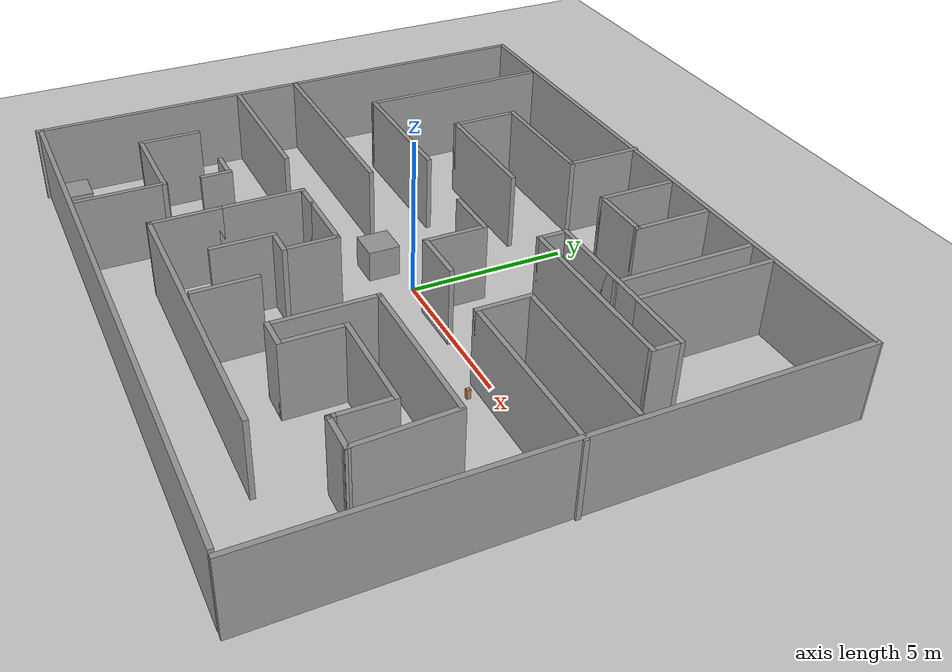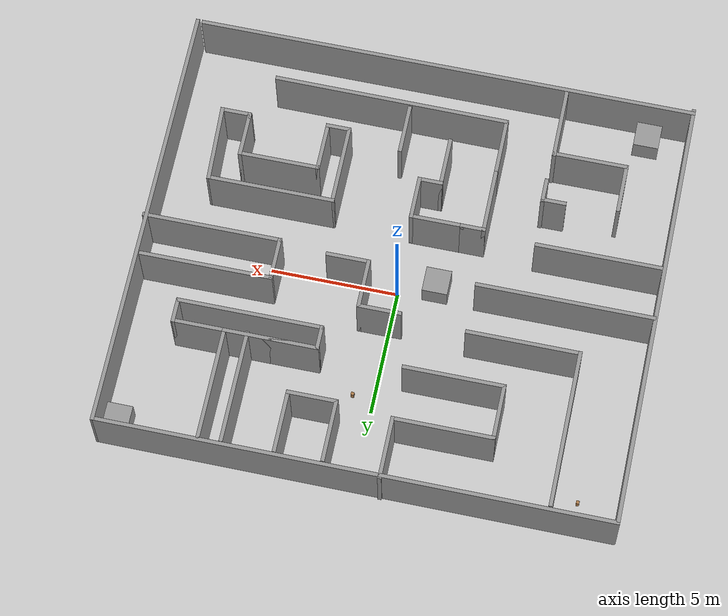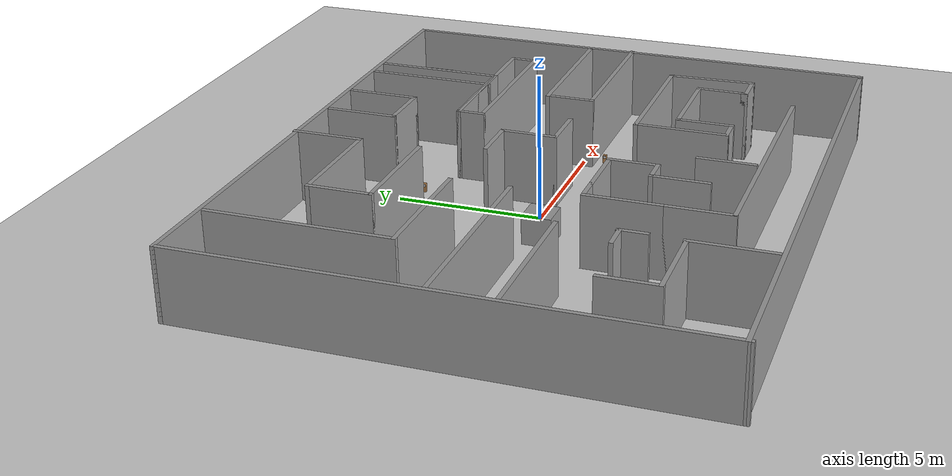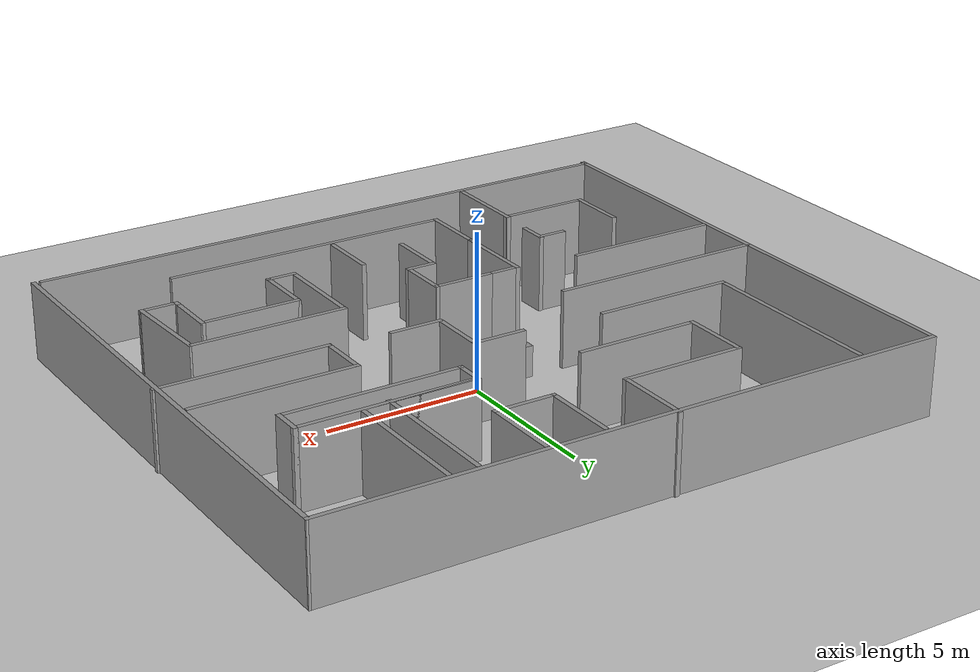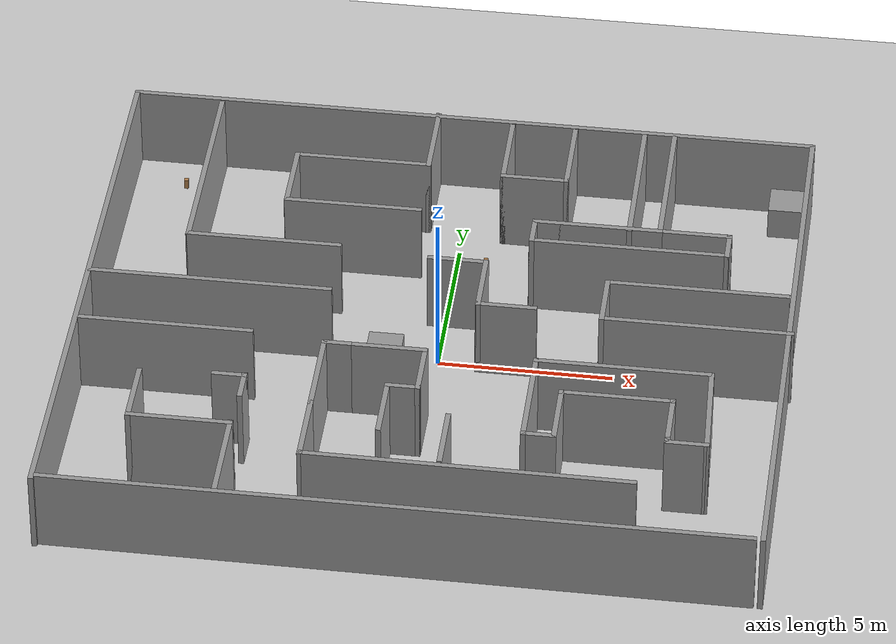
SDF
<sdf version="1.7">
 <world name="default">
  <light name="sun" type="directional">
   <pose>0 0 10 0 -0 0</pose>
   <diffuse>0.8 0.8 0.8 1</diffuse>
   <specular>0.2 0.2 0.2 1</specular>
   <attenuation>
    <range>1000</range>
    <constant>0.9</constant>
    <linear>0.01</linear>
    <quadratic>0.001</quadratic>
   </attenuation>
   <direction>-0.5 0.1 -0.9</direction>
   <spot><inner_angle>0</inner_angle><outer_angle>0</outer_angle><falloff>0</falloff></spot>
  </light>
  <model name="ground_plane">
   <static>1</static>
   <link name="link">
    <collision name="collision">
     <geometry><plane><normal>0 0 1</normal><size>100 100</size></plane></geometry>
     <surface><friction><ode><mu>100</mu><mu2>50</mu2></ode></friction></surface>
    </collision>
    <visual name="visual">
     <cast_shadows>0</cast_shadows>
     <geometry><plane><normal>0 0 1</normal><size>100 100</size></plane></geometry>
     <material>
      <script><uri>file://media/materials/scripts/gazebo.material</uri><name>Gazebo/Grey</name></script>
     </material>
    </visual>
   </link>
  </model>
  <gravity>0 0 -9.8</gravity>
  <magnetic_field>6e-06 2.3e-05 -4.2e-05</magnetic_field>
  <atmosphere type="adiabatic"/>
  <physics type="ode">
   <max_step_size>0.001</max_step_size>
   <real_time_factor>1</real_time_factor>
   <real_time_update_rate>1000</real_time_update_rate>
  </physics>
  <scene><ambient>0.4 0.4 0.4 1</ambient><background>0.7 0.7 0.7 1</background><shadows>1</shadows></scene>
  <audio><device>default</device></audio>
  <spherical_coordinates>
   <surface_model>EARTH_WGS84</surface_model>
   <latitude_deg>0</latitude_deg>
   <longitude_deg>0</longitude_deg>
   <elevation>0</elevation>
   <heading_deg>0</heading_deg>
  </spherical_coordinates>
  <model name="test1">
   <pose>0.01206 -0.37164 0 0 -0 0</pose>
   <link name="Wall_100">
    <collision name="Wall_100_Collision">
     <geometry><box><size>0.25 0.15 2.5</size></box></geometry>
     <pose>0 0 1.25 0 -0 0</pose>
    </collision>
    <visual name="Wall_100_Visual">
     <pose>0 0 1.25 0 -0 0</pose>
     <geometry><box><size>0.25 0.15 2.5</size></box></geometry>
     <material>
      <script><uri>file://media/materials/scripts/gazebo.material</uri><name>Gazebo/Grey</name></script>
      <ambient>1 1 1 1</ambient>
     </material>
     <meta><layer>0</layer></meta>
    </visual>
    <pose>6.9935 -4.91253 0 0 -0 -1.5708</pose>
   </link>
   <link name="Wall_101">
    <collision name="Wall_101_Collision">
     <geometry><box><size>1.25 0.15 2.5</size></box></geometry>
     <pose>0 0 1.25 0 -0 0</pose>
    </collision>
    <visual name="Wall_101_Visual">
     <pose>0 0 1.25 0 -0 0</pose>
     <geometry><box><size>1.25 0.15 2.5</size></box></geometry>
     <material>
      <script><uri>file://media/materials/scripts/gazebo.material</uri><name>Gazebo/Grey</name></script>
      <ambient>1 1 1 1</ambient>
     </material>
     <meta><layer>0</layer></meta>
    </visual>
    <pose>7.5435 -4.96253 0 0 -0 0</pose>
   </link>
   <link name="Wall_11">
    <collision name="Wall_11_Collision">
     <geometry><box><size>7 0.15 2.5</size></box></geometry>
     <pose>0 0 1.25 0 -0 0</pose>
    </collision>
    <visual name="Wall_11_Visual">
     <pose>0 0 1.25 0 -0 0</pose>
     <geometry><box><size>7 0.15 2.5</size></box></geometry>
     <material>
      <script><uri>file://media/materials/scripts/gazebo.material</uri><name>Gazebo/Grey</name></script>
      <ambient>1 1 1 1</ambient>
     </material>
     <meta><layer>0</layer></meta>
    </visual>
    <pose>-6.53301 0.309119 0 0 -0 0</pose>
   </link>
   <link name="Wall_13">
    <collision name="Wall_13_Collision">
     <geometry><box><size>2.85041 0.15 2.5</size></box></geometry>
     <pose>0 0 1.25 0 -0 0</pose>
    </collision>
    <visual name="Wall_13_Visual">
     <pose>0 0 1.25 0 -0 0</pose>
     <geometry><box><size>2.85041 0.15 2.5</size></box></geometry>
     <material>
      <script><uri>file://media/materials/scripts/gazebo.material</uri><name>Gazebo/Grey</name></script>
      <ambient>1 1 1 1</ambient>
     </material>
     <meta><layer>0</layer></meta>
    </visual>
    <pose>-4.99645 -7.03064 0 0 -0 1.5708</pose>
   </link>
   <link name="Wall_14">
    <collision name="Wall_14_Collision">
     <geometry><box><size>3 0.15 2.5</size></box></geometry>
     <pose>0 0 1.25 0 -0 0</pose>
    </collision>
    <visual name="Wall_14_Visual">
     <pose>0 0 1.25 0 -0 0</pose>
     <geometry><box><size>3 0.15 2.5</size></box></geometry>
     <material>
      <script><uri>file://media/materials/scripts/gazebo.material</uri><name>Gazebo/Grey</name></script>
      <ambient>1 1 1 1</ambient>
     </material>
     <meta><layer>0</layer></meta>
    </visual>
    <pose>-6.42145 -5.71078 0 0 -0 3.14159</pose>
   </link>
   <link name="Wall_16">
    <collision name="Wall_16_Collision">
     <geometry><box><size>4.5 0.15 2.5</size></box></geometry>
     <pose>0 0 1.25 0 -0 0</pose>
    </collision>
    <visual name="Wall_16_Visual">
     <pose>0 0 1.25 0 -0 0</pose>
     <geometry><box><size>4.5 0.15 2.5</size></box></geometry>
     <material>
      <script><uri>file://media/materials/scripts/gazebo.material</uri><name>Gazebo/Grey</name></script>
      <ambient>1 1 1 1</ambient>
     </material>
     <meta><layer>0</layer></meta>
    </visual>
    <pose>5.91618 6.2558 0 0 -0 -1.5708</pose>
   </link>
   <link name="Wall_17">
    <collision name="Wall_17_Collision">
     <geometry><box><size>3.75 0.15 2.5</size></box></geometry>
     <pose>0 0 1.25 0 -0 0</pose>
    </collision>
    <visual name="Wall_17_Visual">
     <pose>0 0 1.25 0 -0 0</pose>
     <geometry><box><size>3.75 0.15 2.5</size></box></geometry>
     <material>
      <script><uri>file://media/materials/scripts/gazebo.material</uri><name>Gazebo/Grey</name></script>
      <ambient>1 1 1 1</ambient>
     </material>
     <meta><layer>0</layer></meta>
    </visual>
    <pose>4.11618 4.0808 0 0 -0 3.14159</pose>
   </link>
   <link name="Wall_18">
    <collision name="Wall_18_Collision">
     <geometry><box><size>5.75 0.15 2.5</size></box></geometry>
     <pose>0 0 1.25 0 -0 0</pose>
    </collision>
    <visual name="Wall_18_Visual">
     <pose>0 0 1.25 0 -0 0</pose>
     <geometry><box><size>5.75 0.15 2.5</size></box></geometry>
     <material>
      <script><uri>file://media/materials/scripts/gazebo.material</uri><name>Gazebo/Grey</name></script>
      <ambient>1 1 1 1</ambient>
     </material>
     <meta><layer>0</layer></meta>
    </visual>
    <pose>5.11618 4.0808 0 0 -0 0</pose>
   </link>
   <link name="Wall_2">
    <collision name="Wall_2_Collision">
     <geometry><box><size>19.8616 0.15 2.5</size></box></geometry>
     <pose>0 0 1.25 0 -0 0</pose>
    </collision>
    <visual name="Wall_2_Visual">
     <pose>0 0 1.25 0 -0 0</pose>
     <geometry><box><size>19.8616 0.15 2.5</size></box></geometry>
     <material>
      <script><uri>file://media/materials/scripts/gazebo.material</uri><name>Gazebo/Grey</name></script>
      <ambient>1 1 1 1</ambient>
     </material>
     <meta><layer>0</layer></meta>
    </visual>
    <pose>-0.160714 -8.54616 0 0 -0 -0.002341</pose>
   </link>
   <link name="Wall_20">
    <collision name="Wall_20_Collision">
     <geometry><box><size>1 0.15 2.5</size></box></geometry>
     <pose>0 0 1.25 0 -0 0</pose>
    </collision>
    <visual name="Wall_20_Visual">
     <pose>0 0 1.25 0 -0 0</pose>
     <geometry><box><size>1 0.15 2.5</size></box></geometry>
     <material>
      <script><uri>file://media/materials/scripts/gazebo.material</uri><name>Gazebo/Grey</name></script>
      <ambient>1 1 1 1</ambient>
     </material>
     <meta><layer>0</layer></meta>
    </visual>
    <pose>2.31618 3.6558 0 0 -0 -1.5708</pose>
   </link>
   <link name="Wall_21">
    <collision name="Wall_21_Collision">
     <geometry><box><size>5.75 0.15 2.5</size></box></geometry>
     <pose>0 0 1.25 0 -0 0</pose>
    </collision>
    <visual name="Wall_21_Visual">
     <pose>0 0 1.25 0 -0 0</pose>
     <geometry><box><size>5.75 0.15 2.5</size></box></geometry>
     <material>
      <script><uri>file://media/materials/scripts/gazebo.material</uri><name>Gazebo/Grey</name></script>
      <ambient>1 1 1 1</ambient>
     </material>
     <meta><layer>0</layer></meta>
    </visual>
    <pose>5.11618 3.2308 0 0 -0 0</pose>
   </link>
   <link name="Wall_22">
    <collision name="Wall_22_Collision">
     <geometry><box><size>1 0.15 2.5</size></box></geometry>
     <pose>0 0 1.25 0 -0 0</pose>
    </collision>
    <visual name="Wall_22_Visual">
     <pose>0 0 1.25 0 -0 0</pose>
     <geometry><box><size>1 0.15 2.5</size></box></geometry>
     <material>
      <script><uri>file://media/materials/scripts/gazebo.material</uri><name>Gazebo/Grey</name></script>
      <ambient>1 1 1 1</ambient>
     </material>
     <meta><layer>0</layer></meta>
    </visual>
    <pose>7.91618 3.6558 0 0 -0 1.5708</pose>
   </link>
   <link name="Wall_24">
    <collision name="Wall_24_Collision">
     <geometry><box><size>4.5 0.15 2.5</size></box></geometry>
     <pose>0 0 1.25 0 -0 0</pose>
    </collision>
    <visual name="Wall_24_Visual">
     <pose>0 0 1.25 0 -0 0</pose>
     <geometry><box><size>4.5 0.15 2.5</size></box></geometry>
     <material>
      <script><uri>file://media/materials/scripts/gazebo.material</uri><name>Gazebo/Grey</name></script>
      <ambient>1 1 1 1</ambient>
     </material>
     <meta><layer>0</layer></meta>
    </visual>
    <pose>5.03941 6.20965 0 0 -0 -1.5708</pose>
   </link>
   <link name="Wall_26">
    <collision name="Wall_26_Collision">
     <geometry><box><size>2.5 0.15 2.5</size></box></geometry>
     <pose>0 0 1.25 0 -0 0</pose>
    </collision>
    <visual name="Wall_26_Visual">
     <pose>0 0 1.25 0 -0 0</pose>
     <geometry><box><size>2.5 0.15 2.5</size></box></geometry>
     <material>
      <script><uri>file://media/materials/scripts/gazebo.material</uri><name>Gazebo/Grey</name></script>
      <ambient>1 1 1 1</ambient>
     </material>
     <meta><layer>0</layer></meta>
    </visual>
    <pose>-1.05185 7.44038 0 0 -0 -1.5708</pose>
   </link>
   <link name="Wall_28">
    <collision name="Wall_28_Collision">
     <geometry><box><size>4 0.15 2.5</size></box></geometry>
     <pose>0 0 1.25 0 -0 0</pose>
    </collision>
    <visual name="Wall_28_Visual">
     <pose>0 0 1.25 0 -0 0</pose>
     <geometry><box><size>4 0.15 2.5</size></box></geometry>
     <material>
      <script><uri>file://media/materials/scripts/gazebo.material</uri><name>Gazebo/Grey</name></script>
      <ambient>1 1 1 1</ambient>
     </material>
     <meta><layer>0</layer></meta>
    </visual>
    <pose>-2.97685 6.26538 0 0 -0 3.14159</pose>
   </link>
   <link name="Wall_30">
    <collision name="Wall_30_Collision">
     <geometry><box><size>2.25 0.15 2.5</size></box></geometry>
     <pose>0 0 1.25 0 -0 0</pose>
    </collision>
    <visual name="Wall_30_Visual">
     <pose>0 0 1.25 0 -0 0</pose>
     <geometry><box><size>2.25 0.15 2.5</size></box></geometry>
     <material>
      <script><uri>file://media/materials/scripts/gazebo.material</uri><name>Gazebo/Grey</name></script>
      <ambient>1 1 1 1</ambient>
     </material>
     <meta><layer>0</layer></meta>
    </visual>
    <pose>-4.90185 5.21538 0 0 -0 -1.5708</pose>
   </link>
   <link name="Wall_31">
    <collision name="Wall_31_Collision">
     <geometry><box><size>4 0.15 2.5</size></box></geometry>
     <pose>0 0 1.25 0 -0 0</pose>
    </collision>
    <visual name="Wall_31_Visual">
     <pose>0 0 1.25 0 -0 0</pose>
     <geometry><box><size>4 0.15 2.5</size></box></geometry>
     <material>
      <script><uri>file://media/materials/scripts/gazebo.material</uri><name>Gazebo/Grey</name></script>
      <ambient>1 1 1 1</ambient>
     </material>
     <meta><layer>0</layer></meta>
    </visual>
    <pose>-2.97685 4.16538 0 0 -0 0</pose>
   </link>
   <link name="Wall_33">
    <collision name="Wall_33_Collision">
     <geometry><box><size>2.25 0.15 2.5</size></box></geometry>
     <pose>0 0 1.25 0 -0 0</pose>
    </collision>
    <visual name="Wall_33_Visual">
     <pose>0 0 1.25 0 -0 0</pose>
     <geometry><box><size>2.25 0.15 2.5</size></box></geometry>
     <material>
      <script><uri>file://media/materials/scripts/gazebo.material</uri><name>Gazebo/Grey</name></script>
      <ambient>1 1 1 1</ambient>
     </material>
     <meta><layer>0</layer></meta>
    </visual>
    <pose>-2.92176 -5.63235 0 0 -0 -1.5708</pose>
   </link>
   <link name="Wall_34">
    <collision name="Wall_34_Collision">
     <geometry><box><size>9.30685 0.15 2.5</size></box></geometry>
     <pose>0 0 1.25 0 -0 0</pose>
    </collision>
    <visual name="Wall_34_Visual">
     <pose>0 0 1.25 0 -0 0</pose>
     <geometry><box><size>9.30685 0.15 2.5</size></box></geometry>
     <material>
      <script><uri>file://media/materials/scripts/gazebo.material</uri><name>Gazebo/Grey</name></script>
      <ambient>1 1 1 1</ambient>
     </material>
     <meta><layer>0</layer></meta>
    </visual>
    <pose>1.69639 -6.71269 0 0 -0 -0.006628</pose>
   </link>
   <link name="Wall_4">
    <collision name="Wall_4_Collision">
     <geometry><box><size>17.25 0.15 2.5</size></box></geometry>
     <pose>0 0 1.25 0 -0 0</pose>
    </collision>
    <visual name="Wall_4_Visual">
     <pose>0 0 1.25 0 -0 0</pose>
     <geometry><box><size>17.25 0.15 2.5</size></box></geometry>
     <material>
      <script><uri>file://media/materials/scripts/gazebo.material</uri><name>Gazebo/Grey</name></script>
      <ambient>1 1 1 1</ambient>
     </material>
     <meta><layer>0</layer></meta>
    </visual>
    <pose>-10.0165 -0.065381 0 0 -0 1.5708</pose>
   </link>
   <link name="Wall_45">
    <collision name="Wall_45_Collision">
     <geometry><box><size>2 0.15 2.5</size></box></geometry>
     <pose>0 0 1.25 0 -0 0</pose>
    </collision>
    <visual name="Wall_45_Visual">
     <pose>0 0 1.25 0 -0 0</pose>
     <geometry><box><size>2 0.15 2.5</size></box></geometry>
     <material>
      <script><uri>file://media/materials/scripts/gazebo.material</uri><name>Gazebo/Grey</name></script>
      <ambient>1 1 1 1</ambient>
     </material>
     <meta><layer>0</layer></meta>
    </visual>
    <pose>0.915611 -5.58052 0 0 -0 -1.5708</pose>
   </link>
   <link name="Wall_5">
    <collision name="Wall_5_Collision">
     <geometry><box><size>20.1116 0.15 2.5</size></box></geometry>
     <pose>0 0 1.25 0 -0 0</pose>
    </collision>
    <visual name="Wall_5_Visual">
     <pose>0 0 1.25 0 -0 0</pose>
     <geometry><box><size>20.1116 0.15 2.5</size></box></geometry>
     <material>
      <script><uri>file://media/materials/scripts/gazebo.material</uri><name>Gazebo/Grey</name></script>
      <ambient>1 1 1 1</ambient>
     </material>
     <meta><layer>0</layer></meta>
    </visual>
    <pose>-0.035714 8.55384 0 0 -0 -0.002312</pose>
   </link>
   <link name="Wall_50">
    <collision name="Wall_50_Collision">
     <geometry><box><size>5 0.15 2.5</size></box></geometry>
     <pose>0 0 1.25 0 -0 0</pose>
    </collision>
    <visual name="Wall_50_Visual">
     <pose>0 0 1.25 0 -0 0</pose>
     <geometry><box><size>5 0.15 2.5</size></box></geometry>
     <material>
      <script><uri>file://media/materials/scripts/gazebo.material</uri><name>Gazebo/Grey</name></script>
      <ambient>1 1 1 1</ambient>
     </material>
     <meta><layer>0</layer></meta>
    </visual>
    <pose>-7.4573 -1.77702 0 0 -0 0</pose>
   </link>
   <link name="Wall_52">
    <collision name="Wall_52_Collision">
     <geometry><box><size>2.75 0.15 2.5</size></box></geometry>
     <pose>0 0 1.25 0 -0 0</pose>
    </collision>
    <visual name="Wall_52_Visual">
     <pose>0 0 1.25 0 -0 0</pose>
     <geometry><box><size>2.75 0.15 2.5</size></box></geometry>
     <material>
      <script><uri>file://media/materials/scripts/gazebo.material</uri><name>Gazebo/Grey</name></script>
      <ambient>1 1 1 1</ambient>
     </material>
     <meta><layer>0</layer></meta>
    </visual>
    <pose>-2.92176 -3.28235 0 0 -0 1.5708</pose>
   </link>
   <link name="Wall_58">
    <collision name="Wall_58_Collision">
     <geometry><box><size>5.25 0.15 2.5</size></box></geometry>
     <pose>0 0 1.25 0 -0 0</pose>
    </collision>
    <visual name="Wall_58_Visual">
     <pose>0 0 1.25 0 -0 0</pose>
     <geometry><box><size>5.25 0.15 2.5</size></box></geometry>
     <material>
      <script><uri>file://media/materials/scripts/gazebo.material</uri><name>Gazebo/Grey</name></script>
      <ambient>1 1 1 1</ambient>
     </material>
     <meta><layer>0</layer></meta>
    </visual>
    <pose>7.21667 1.63 0 0 -0 3.14159</pose>
   </link>
   <link name="Wall_59">
    <collision name="Wall_59_Collision">
     <geometry><box><size>1.75 0.15 2.5</size></box></geometry>
     <pose>0 0 1.25 0 -0 0</pose>
    </collision>
    <visual name="Wall_59_Visual">
     <pose>0 0 1.25 0 -0 0</pose>
     <geometry><box><size>1.75 0.15 2.5</size></box></geometry>
     <material>
      <script><uri>file://media/materials/scripts/gazebo.material</uri><name>Gazebo/Grey</name></script>
      <ambient>1 1 1 1</ambient>
     </material>
     <meta><layer>0</layer></meta>
    </visual>
    <pose>4.66667 0.829995 0 0 -0 -1.5708</pose>
   </link>
   <link name="Wall_6">
    <collision name="Wall_6_Collision">
     <geometry><box><size>17.25 0.15 2.5</size></box></geometry>
     <pose>0 0 1.25 0 -0 0</pose>
    </collision>
    <visual name="Wall_6_Visual">
     <pose>0 0 1.25 0 -0 0</pose>
     <geometry><box><size>17.25 0.15 2.5</size></box></geometry>
     <material>
      <script><uri>file://media/materials/scripts/gazebo.material</uri><name>Gazebo/Grey</name></script>
      <ambient>1 1 1 1</ambient>
     </material>
     <meta><layer>0</layer></meta>
    </visual>
    <pose>9.94507 -0.019235 0 0 -0 -1.5708</pose>
   </link>
   <link name="Wall_60">
    <collision name="Wall_60_Collision">
     <geometry><box><size>5.5 0.15 2.5</size></box></geometry>
     <pose>0 0 1.25 0 -0 0</pose>
    </collision>
    <visual name="Wall_60_Visual">
     <pose>0 0 1.25 0 -0 0</pose>
     <geometry><box><size>5.5 0.15 2.5</size></box></geometry>
     <material>
      <script><uri>file://media/materials/scripts/gazebo.material</uri><name>Gazebo/Grey</name></script>
      <ambient>1 1 1 1</ambient>
     </material>
     <meta><layer>0</layer></meta>
    </visual>
    <pose>7.34167 0.029995 0 0 -0 0</pose>
   </link>
   <link name="Wall_63">
    <collision name="Wall_63_Collision">
     <geometry><box><size>1.75 0.15 2.5</size></box></geometry>
     <pose>0 0 1.25 0 -0 0</pose>
    </collision>
    <visual name="Wall_63_Visual">
     <pose>0 0 1.25 0 -0 0</pose>
     <geometry><box><size>1.75 0.15 2.5</size></box></geometry>
     <material>
      <script><uri>file://media/materials/scripts/gazebo.material</uri><name>Gazebo/Grey</name></script>
      <ambient>1 1 1 1</ambient>
     </material>
     <meta><layer>0</layer></meta>
    </visual>
    <pose>-0.071761 -2.78235 0 0 -0 -1.5708</pose>
   </link>
   <link name="Wall_65">
    <collision name="Wall_65_Collision">
     <geometry><box><size>5 0.15 2.5</size></box></geometry>
     <pose>0 0 1.25 0 -0 0</pose>
    </collision>
    <visual name="Wall_65_Visual">
     <pose>0 0 1.25 0 -0 0</pose>
     <geometry><box><size>5 0.15 2.5</size></box></geometry>
     <material>
      <script><uri>file://media/materials/scripts/gazebo.material</uri><name>Gazebo/Grey</name></script>
      <ambient>1 1 1 1</ambient>
     </material>
     <meta><layer>0</layer></meta>
    </visual>
    <pose>5.4685 -2.01253 0 0 -0 0</pose>
   </link>
   <link name="Wall_67">
    <collision name="Wall_67_Collision">
     <geometry><box><size>3.10329 0.15 2.5</size></box></geometry>
     <pose>0 0 1.25 0 -0 0</pose>
    </collision>
    <visual name="Wall_67_Visual">
     <pose>0 0 1.25 0 -0 0</pose>
     <geometry><box><size>3.10329 0.15 2.5</size></box></geometry>
     <material>
      <script><uri>file://media/materials/scripts/gazebo.material</uri><name>Gazebo/Grey</name></script>
      <ambient>1 1 1 1</ambient>
     </material>
     <meta><layer>0</layer></meta>
    </visual>
    <pose>8.02384 -3.48753 0 0 -0 -1.52361</pose>
   </link>
   <link name="Wall_69">
    <collision name="Wall_69_Collision">
     <geometry><box><size>1.75 0.15 2.5</size></box></geometry>
     <pose>0 0 1.25 0 -0 0</pose>
    </collision>
    <visual name="Wall_69_Visual">
     <pose>0 0 1.25 0 -0 0</pose>
     <geometry><box><size>1.75 0.15 2.5</size></box></geometry>
     <material>
      <script><uri>file://media/materials/scripts/gazebo.material</uri><name>Gazebo/Grey</name></script>
      <ambient>1 1 1 1</ambient>
     </material>
     <meta><layer>0</layer></meta>
    </visual>
    <pose>0.340549 2.06995 0 0 -0 0</pose>
   </link>
   <link name="Wall_70">
    <collision name="Wall_70_Collision">
     <geometry><box><size>2 0.15 2.5</size></box></geometry>
     <pose>0 0 1.25 0 -0 0</pose>
    </collision>
    <visual name="Wall_70_Visual">
     <pose>0 0 1.25 0 -0 0</pose>
     <geometry><box><size>2 0.15 2.5</size></box></geometry>
     <material>
      <script><uri>file://media/materials/scripts/gazebo.material</uri><name>Gazebo/Grey</name></script>
      <ambient>1 1 1 1</ambient>
     </material>
     <meta><layer>0</layer></meta>
    </visual>
    <pose>1.14055 1.14495 0 0 -0 -1.5708</pose>
   </link>
   <link name="Wall_71">
    <collision name="Wall_71_Collision">
     <geometry><box><size>1.75 0.15 2.5</size></box></geometry>
     <pose>0 0 1.25 0 -0 0</pose>
    </collision>
    <visual name="Wall_71_Visual">
     <pose>0 0 1.25 0 -0 0</pose>
     <geometry><box><size>1.75 0.15 2.5</size></box></geometry>
     <material>
      <script><uri>file://media/materials/scripts/gazebo.material</uri><name>Gazebo/Grey</name></script>
      <ambient>1 1 1 1</ambient>
     </material>
     <meta><layer>0</layer></meta>
    </visual>
    <pose>1.94055 0.219946 0 0 -0 0</pose>
   </link>
   <link name="Wall_73">
    <collision name="Wall_73_Collision">
     <geometry><box><size>2.5 0.15 2.5</size></box></geometry>
     <pose>0 0 1.25 0 -0 0</pose>
    </collision>
    <visual name="Wall_73_Visual">
     <pose>0 0 1.25 0 -0 0</pose>
     <geometry><box><size>2.5 0.15 2.5</size></box></geometry>
     <material>
      <script><uri>file://media/materials/scripts/gazebo.material</uri><name>Gazebo/Grey</name></script>
      <ambient>1 1 1 1</ambient>
     </material>
     <meta><layer>0</layer></meta>
    </visual>
    <pose>1.15512 7.20701 0 0 -0 -1.5708</pose>
   </link>
   <link name="Wall_74">
    <collision name="Wall_74_Collision">
     <geometry><box><size>2 0.15 2.5</size></box></geometry>
     <pose>0 0 1.25 0 -0 0</pose>
    </collision>
    <visual name="Wall_74_Visual">
     <pose>0 0 1.25 0 -0 0</pose>
     <geometry><box><size>2 0.15 2.5</size></box></geometry>
     <material>
      <script><uri>file://media/materials/scripts/gazebo.material</uri><name>Gazebo/Grey</name></script>
      <ambient>1 1 1 1</ambient>
     </material>
     <meta><layer>0</layer></meta>
    </visual>
    <pose>2.08012 6.03201 0 0 -0 0</pose>
   </link>
   <link name="Wall_75">
    <collision name="Wall_75_Collision">
     <geometry><box><size>2.5 0.15 2.5</size></box></geometry>
     <pose>0 0 1.25 0 -0 0</pose>
    </collision>
    <visual name="Wall_75_Visual">
     <pose>0 0 1.25 0 -0 0</pose>
     <geometry><box><size>2.5 0.15 2.5</size></box></geometry>
     <material>
      <script><uri>file://media/materials/scripts/gazebo.material</uri><name>Gazebo/Grey</name></script>
      <ambient>1 1 1 1</ambient>
     </material>
     <meta><layer>0</layer></meta>
    </visual>
    <pose>3.00512 7.20701 0 0 -0 1.5708</pose>
   </link>
   <link name="Wall_78">
    <collision name="Wall_78_Collision">
     <geometry><box><size>2 0.15 2.5</size></box></geometry>
     <pose>0 0 1.25 0 -0 0</pose>
    </collision>
    <visual name="Wall_78_Visual">
     <pose>0 0 1.25 0 -0 0</pose>
     <geometry><box><size>2 0.15 2.5</size></box></geometry>
     <material>
      <script><uri>file://media/materials/scripts/gazebo.material</uri><name>Gazebo/Grey</name></script>
      <ambient>1 1 1 1</ambient>
     </material>
     <meta><layer>0</layer></meta>
    </visual>
    <pose>-7.84645 -4.78578 0 0 -0 -1.5708</pose>
   </link>
   <link name="Wall_8">
    <collision name="Wall_8_Collision">
     <geometry><box><size>6.25 0.15 2.5</size></box></geometry>
     <pose>0 0 1.25 0 -0 0</pose>
    </collision>
    <visual name="Wall_8_Visual">
     <pose>0 0 1.25 0 -0 0</pose>
     <geometry><box><size>6.25 0.15 2.5</size></box></geometry>
     <material>
      <script><uri>file://media/materials/scripts/gazebo.material</uri><name>Gazebo/Grey</name></script>
      <ambient>1 1 1 1</ambient>
     </material>
     <meta><layer>0</layer></meta>
    </visual>
    <pose>-7.46613 5.33465 0 0 -0 -1.5708</pose>
   </link>
   <link name="Wall_83">
    <collision name="Wall_83_Collision">
     <geometry><box><size>1 0.15 2.5</size></box></geometry>
     <pose>0 0 1.25 0 -0 0</pose>
    </collision>
    <visual name="Wall_83_Visual">
     <pose>0 0 1.25 0 -0 0</pose>
     <geometry><box><size>1 0.15 2.5</size></box></geometry>
     <material>
      <script><uri>file://media/materials/scripts/gazebo.material</uri><name>Gazebo/Grey</name></script>
      <ambient>1 1 1 1</ambient>
     </material>
     <meta><layer>0</layer></meta>
    </visual>
    <pose>-5.33779 -3.6927 0 0 -0 0</pose>
   </link>
   <link name="Wall_84">
    <collision name="Wall_84_Collision">
     <geometry><box><size>1 0.15 2.5</size></box></geometry>
     <pose>0 0 1.25 0 -0 0</pose>
    </collision>
    <visual name="Wall_84_Visual">
     <pose>0 0 1.25 0 -0 0</pose>
     <geometry><box><size>1 0.15 2.5</size></box></geometry>
     <material>
      <script><uri>file://media/materials/scripts/gazebo.material</uri><name>Gazebo/Grey</name></script>
      <ambient>1 1 1 1</ambient>
     </material>
     <meta><layer>0</layer></meta>
    </visual>
    <pose>-4.91279 -4.08736 0 0 -0 -1.5708</pose>
   </link>
   <link name="Wall_86">
    <collision name="Wall_86_Collision">
     <geometry><box><size>1 0.15 2.5</size></box></geometry>
     <pose>0 0 1.25 0 -0 0</pose>
    </collision>
    <visual name="Wall_86_Visual">
     <pose>0 0 1.25 0 -0 0</pose>
     <geometry><box><size>1 0.15 2.5</size></box></geometry>
     <material>
      <script><uri>file://media/materials/scripts/gazebo.material</uri><name>Gazebo/Grey</name></script>
      <ambient>1 1 1 1</ambient>
     </material>
     <meta><layer>0</layer></meta>
    </visual>
    <pose>-2.49676 -1.98235 0 0 -0 0</pose>
   </link>
   <link name="Wall_87">
    <collision name="Wall_87_Collision">
     <geometry><box><size>2.15 0.15 2.5</size></box></geometry>
     <pose>0 0 1.25 0 -0 0</pose>
    </collision>
    <visual name="Wall_87_Visual">
     <pose>0 0 1.25 0 -0 0</pose>
     <geometry><box><size>2.15 0.15 2.5</size></box></geometry>
     <material>
      <script><uri>file://media/materials/scripts/gazebo.material</uri><name>Gazebo/Grey</name></script>
      <ambient>1 1 1 1</ambient>
     </material>
     <meta><layer>0</layer></meta>
    </visual>
    <pose>-1.07176 -1.98235 0 0 -0 0</pose>
   </link>
   <link name="Wall_89">
    <collision name="Wall_89_Collision">
     <geometry><box><size>1 0.15 2.5</size></box></geometry>
     <pose>0 0 1.25 0 -0 0</pose>
    </collision>
    <visual name="Wall_89_Visual">
     <pose>0 0 1.25 0 -0 0</pose>
     <geometry><box><size>1 0.15 2.5</size></box></geometry>
     <material>
      <script><uri>file://media/materials/scripts/gazebo.material</uri><name>Gazebo/Grey</name></script>
      <ambient>1 1 1 1</ambient>
     </material>
     <meta><layer>0</layer></meta>
    </visual>
    <pose>-0.496761 -3.58235 0 0 -0 3.14159</pose>
   </link>
   <link name="Wall_9">
    <collision name="Wall_9_Collision">
     <geometry><box><size>4.5 0.15 2.5</size></box></geometry>
     <pose>0 0 1.25 0 -0 0</pose>
    </collision>
    <visual name="Wall_9_Visual">
     <pose>0 0 1.25 0 -0 0</pose>
     <geometry><box><size>4.5 0.15 2.5</size></box></geometry>
     <material>
      <script><uri>file://media/materials/scripts/gazebo.material</uri><name>Gazebo/Grey</name></script>
      <ambient>1 1 1 1</ambient>
     </material>
     <meta><layer>0</layer></meta>
    </visual>
    <pose>-5.29113 2.28465 0 0 -0 0</pose>
   </link>
   <link name="Wall_90">
    <collision name="Wall_90_Collision">
     <geometry><box><size>2 0.15 2.5</size></box></geometry>
     <pose>0 0 1.25 0 -0 0</pose>
    </collision>
    <visual name="Wall_90_Visual">
     <pose>0 0 1.25 0 -0 0</pose>
     <geometry><box><size>2 0.15 2.5</size></box></geometry>
     <material>
      <script><uri>file://media/materials/scripts/gazebo.material</uri><name>Gazebo/Grey</name></script>
      <ambient>1 1 1 1</ambient>
     </material>
     <meta><layer>0</layer></meta>
    </visual>
    <pose>-0.921761 -4.50735 0 0 -0 -1.5708</pose>
   </link>
   <link name="Wall_94">
    <collision name="Wall_94_Collision">
     <geometry><box><size>3.25 0.15 2.5</size></box></geometry>
     <pose>0 0 1.25 0 -0 0</pose>
    </collision>
    <visual name="Wall_94_Visual">
     <pose>0 0 1.25 0 -0 0</pose>
     <geometry><box><size>3.25 0.15 2.5</size></box></geometry>
     <material>
      <script><uri>file://media/materials/scripts/gazebo.material</uri><name>Gazebo/Grey</name></script>
      <ambient>1 1 1 1</ambient>
     </material>
     <meta><layer>0</layer></meta>
    </visual>
    <pose>3.0435 -3.56253 0 0 -0 -1.5708</pose>
   </link>
   <link name="Wall_96">
    <collision name="Wall_96_Collision">
     <geometry><box><size>1 0.15 2.5</size></box></geometry>
     <pose>0 0 1.25 0 -0 0</pose>
    </collision>
    <visual name="Wall_96_Visual">
     <pose>0 0 1.25 0 -0 0</pose>
     <geometry><box><size>1 0.15 2.5</size></box></geometry>
     <material>
      <script><uri>file://media/materials/scripts/gazebo.material</uri><name>Gazebo/Grey</name></script>
      <ambient>1 1 1 1</ambient>
     </material>
     <meta><layer>0</layer></meta>
    </visual>
    <pose>3.4685 -5.11253 0 0 -0 0</pose>
   </link>
   <link name="Wall_97">
    <collision name="Wall_97_Collision">
     <geometry><box><size>2 0.15 2.5</size></box></geometry>
     <pose>0 0 1.25 0 -0 0</pose>
    </collision>
    <visual name="Wall_97_Visual">
     <pose>0 0 1.25 0 -0 0</pose>
     <geometry><box><size>2 0.15 2.5</size></box></geometry>
     <material>
      <script><uri>file://media/materials/scripts/gazebo.material</uri><name>Gazebo/Grey</name></script>
      <ambient>1 1 1 1</ambient>
     </material>
     <meta><layer>0</layer></meta>
    </visual>
    <pose>3.8935 -4.18753 0 0 -0 1.5708</pose>
   </link>
   <link name="Wall_98">
    <collision name="Wall_98_Collision">
     <geometry><box><size>3.25 0.15 2.5</size></box></geometry>
     <pose>0 0 1.25 0 -0 0</pose>
    </collision>
    <visual name="Wall_98_Visual">
     <pose>0 0 1.25 0 -0 0</pose>
     <geometry><box><size>3.25 0.15 2.5</size></box></geometry>
     <material>
      <script><uri>file://media/materials/scripts/gazebo.material</uri><name>Gazebo/Grey</name></script>
      <ambient>1 1 1 1</ambient>
     </material>
     <meta><layer>0</layer></meta>
    </visual>
    <pose>5.4435 -3.26253 0 0 -0 0</pose>
   </link>
   <link name="Wall_99">
    <collision name="Wall_99_Collision">
     <geometry><box><size>1.75 0.15 2.5</size></box></geometry>
     <pose>0 0 1.25 0 -0 0</pose>
    </collision>
    <visual name="Wall_99_Visual">
     <pose>0 0 1.25 0 -0 0</pose>
     <geometry><box><size>1.75 0.15 2.5</size></box></geometry>
     <material>
      <script><uri>file://media/materials/scripts/gazebo.material</uri><name>Gazebo/Grey</name></script>
      <ambient>1 1 1 1</ambient>
     </material>
     <meta><layer>0</layer></meta>
    </visual>
    <pose>6.9935 -4.06253 0 0 -0 -1.5708</pose>
   </link>
   <static>1</static>
  </model>
  <model name="unit_box">
   <pose>-1.46381 -0.516027 0.499995 0 -1e-05 0</pose>
   <link name="link">
    <inertial>
     <mass>1</mass>
     <inertia>
      <ixx>0.166667</ixx>
      <ixy>0</ixy>
      <ixz>0</ixz>
      <iyy>0.166667</iyy>
      <iyz>0</iyz>
      <izz>0.166667</izz>
     </inertia>
    </inertial>
    <collision name="collision"><geometry><box><size>1 1 1</size></box></geometry></collision>
    <visual name="visual">
     <geometry><box><size>1 1 1</size></box></geometry>
     <material>
      <script><name>Gazebo/Grey</name><uri>file://media/materials/scripts/gazebo.material</uri></script>
     </material>
    </visual>
   </link>
  </model>
  <model name="unit_box_0">
   <pose>-8.41673 -8.32344 0.5 0 0 -0.002339</pose>
   <link name="link">
    <inertial>
     <mass>1</mass>
     <inertia>
      <ixx>0.166667</ixx>
      <ixy>0</ixy>
      <ixz>0</ixz>
      <iyy>0.166667</iyy>
      <iyz>0</iyz>
      <izz>0.166667</izz>
     </inertia>
    </inertial>
    <collision name="collision"><geometry><box><size>1 1 1</size></box></geometry></collision>
    <visual name="visual">
     <geometry><box><size>1 1 1</size></box></geometry>
     <material>
      <script><name>Gazebo/Grey</name><uri>file://media/materials/scripts/gazebo.material</uri></script>
     </material>
    </visual>
   </link>
  </model>
  <model name="unit_box_1">
   <pose>9.32714 7.40896 0.499995 0 1e-05 0</pose>
   <link name="link">
    <inertial>
     <mass>1</mass>
     <inertia>
      <ixx>0.166667</ixx>
      <ixy>0</ixy>
      <ixz>0</ixz>
      <iyy>0.166667</iyy>
      <iyz>0</iyz>
      <izz>0.166667</izz>
     </inertia>
    </inertial>
    <collision name="collision"><geometry><box><size>1 1 1</size></box></geometry></collision>
    <visual name="visual">
     <geometry><box><size>1 1 1</size></box></geometry>
     <material>
      <script><name>Gazebo/Grey</name><uri>file://media/materials/scripts/gazebo.material</uri></script>
     </material>
    </visual>
   </link>
  </model>
  <model name="aruco_column_6x6_100mm_10">
   <link name="link">
    <pose>0 0 0.15 0 -0 0</pose>
    <inertial>
     <mass>1</mass>
     <inertia><ixx>1</ixx><ixy>0</ixy><ixz>0</ixz><iyy>1</iyy><iyz>0</iyz><izz>1</izz></inertia>
    </inertial>
    <collision name="collision">
     <geometry><box><size>0.12 0.12 0.3</size></box></geometry>
     <surface>
      <contact>
       <poissons_ratio>0.347</poissons_ratio>
       <elastic_modulus>8.8e+09</elastic_modulus>
       <ode><kp>100000</kp><kd>1</kd><max_vel>1</max_vel><min_depth>0.001</min_depth></ode>
      </contact>
      <friction>
       <torsional>
        <coefficient>1</coefficient>
        <use_patch_radius>0</use_patch_radius>
        <surface_radius>0.05</surface_radius>
       </torsional>
      </friction>
     </surface>
    </collision>
    <visual name="visual">
     <geometry><box><size>0.12 0.12 0.3</size></box></geometry>
     <material>
      <script><uri>file://media/materials/scripts/gazebo.material</uri><name>Gazebo/Wood</name></script>
     </material>
    </visual>
   </link>
   <link name="aruco_6x6_100mm_10::main">
    <pose relative_to="aruco_6x6_100mm_10::__model__">0 0 0 0 -0 0</pose>
    <visual name="main_Visual">
     <geometry><box><size>0.1 0.1 0.001</size></box></geometry>
     <material>
      <script>
       <uri>file://media/materials/scripts</uri>
       <uri>file://media/materials/textures</uri>
       <name>aruco_6x6_100mm_10</name>
      </script>
     </material>
    </visual>
    <inertial>
     <inertia><ixx>1</ixx><ixy>0</ixy><ixz>0</ixz><iyy>1</iyy><iyz>0</iyz><izz>1</izz></inertia>
     <mass>1</mass>
    </inertial>
   </link>
   <frame name="aruco_6x6_100mm_10::__model__" attached_to="aruco_6x6_100mm_10::main">
    <pose relative_to="__model__">-0.06 0 0.24 3.14159 1.57079 3.14159</pose>
   </frame>
   <joint name="aruco_6x6_100mm_10_joint" type="fixed">
    <child>aruco_6x6_100mm_10::main</child>
    <parent>link</parent>
   </joint>
   <pose>-8.413 7.00214 -0.001049 0 -0.000405 0</pose>
  </model>
  <model name="aruco_column_6x6_100mm_7">
   <link name="link">
    <pose>0 0 0.15 0 -0 0</pose>
    <inertial>
     <mass>1</mass>
     <inertia><ixx>1</ixx><ixy>0</ixy><ixz>0</ixz><iyy>1</iyy><iyz>0</iyz><izz>1</izz></inertia>
    </inertial>
    <collision name="collision">
     <geometry><box><size>0.12 0.12 0.3</size></box></geometry>
     <surface>
      <contact>
       <poissons_ratio>0.347</poissons_ratio>
       <elastic_modulus>8.8e+09</elastic_modulus>
       <ode><kp>100000</kp><kd>1</kd><max_vel>1</max_vel><min_depth>0.001</min_depth></ode>
      </contact>
      <friction>
       <torsional>
        <coefficient>1</coefficient>
        <use_patch_radius>0</use_patch_radius>
        <surface_radius>0.05</surface_radius>
       </torsional>
      </friction>
     </surface>
    </collision>
    <visual name="visual">
     <geometry><box><size>0.12 0.12 0.3</size></box></geometry>
     <material>
      <script><uri>file://media/materials/scripts/gazebo.material</uri><name>Gazebo/Wood</name></script>
     </material>
    </visual>
   </link>
   <link name="aruco_6x6_100mm_7::main">
    <pose relative_to="aruco_6x6_100mm_7::__model__">0 0 0 0 -0 0</pose>
    <visual name="main_Visual">
     <geometry><box><size>0.1 0.1 0.001</size></box></geometry>
     <material>
      <script>
       <uri>file://media/materials/scripts</uri>
       <uri>file://media/materials/textures</uri>
       <name>aruco_6x6_100mm_7</name>
      </script>
     </material>
    </visual>
    <inertial>
     <inertia><ixx>1</ixx><ixy>0</ixy><ixz>0</ixz><iyy>1</iyy><iyz>0</iyz><izz>1</izz></inertia>
     <mass>1</mass>
    </inertial>
   </link>
   <frame name="aruco_6x6_100mm_7::__model__" attached_to="aruco_6x6_100mm_7::main">
    <pose relative_to="__model__">-0.06 0 0.24 3.14159 1.57079 3.14159</pose>
   </frame>
   <joint name="aruco_6x6_100mm_7_joint" type="fixed">
    <child>aruco_6x6_100mm_7::main</child>
    <parent>link</parent>
   </joint>
   <pose>0.833137 4.4477 -0.001049 0 -0.000405 0</pose>
  </model>
  <model name="aruco_column_6x6_100mm_3">
   <link name="link">
    <pose>0 0 0.15 0 -0 0</pose>
    <inertial>
     <mass>1</mass>
     <inertia><ixx>1</ixx><ixy>0</ixy><ixz>0</ixz><iyy>1</iyy><iyz>0</iyz><izz>1</izz></inertia>
    </inertial>
    <collision name="collision">
     <geometry><box><size>0.12 0.12 0.3</size></box></geometry>
     <surface>
      <contact>
       <poissons_ratio>0.347</poissons_ratio>
       <elastic_modulus>8.8e+09</elastic_modulus>
       <ode><kp>100000</kp><kd>1</kd><max_vel>1</max_vel><min_depth>0.001</min_depth></ode>
      </contact>
      <friction>
       <torsional>
        <coefficient>1</coefficient>
        <use_patch_radius>0</use_patch_radius>
        <surface_radius>0.05</surface_radius>
       </torsional>
      </friction>
     </surface>
    </collision>
    <visual name="visual">
     <geometry><box><size>0.12 0.12 0.3</size></box></geometry>
     <material>
      <script><uri>file://media/materials/scripts/gazebo.material</uri><name>Gazebo/Wood</name></script>
     </material>
    </visual>
   </link>
   <link name="aruco_6x6_100mm_3::main">
    <pose relative_to="aruco_6x6_100mm_3::__model__">0 0 0 0 -0 0</pose>
    <visual name="main_Visual">
     <geometry><box><size>0.1 0.1 0.001</size></box></geometry>
     <material>
      <script>
       <uri>file://media/materials/scripts</uri>
       <uri>file://media/materials/textures</uri>
       <name>aruco_6x6_100mm_3</name>
      </script>
     </material>
    </visual>
    <inertial>
     <inertia><ixx>1</ixx><ixy>0</ixy><ixz>0</ixz><iyy>1</iyy><iyz>0</iyz><izz>1</izz></inertia>
     <mass>1</mass>
    </inertial>
   </link>
   <frame name="aruco_6x6_100mm_3::__model__" attached_to="aruco_6x6_100mm_3::main">
    <pose relative_to="__model__">-0.06 0 0.24 3.14159 1.57079 3.14159</pose>
   </frame>
   <joint name="aruco_6x6_100mm_3_joint" type="fixed">
    <child>aruco_6x6_100mm_3::main</child>
    <parent>link</parent>
   </joint>
   <pose>5.11128 -0.732071 -0.001049 0 -0.000405 0</pose>
  </model>
 </world>
</sdf>
